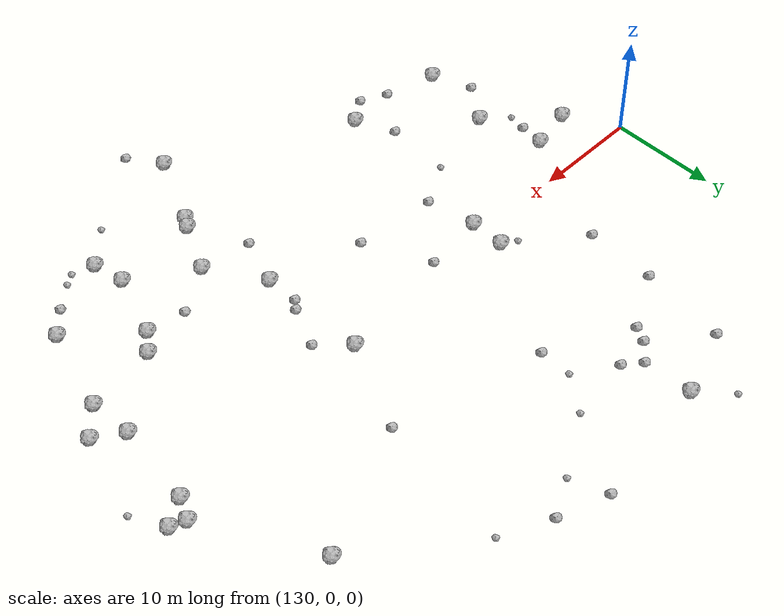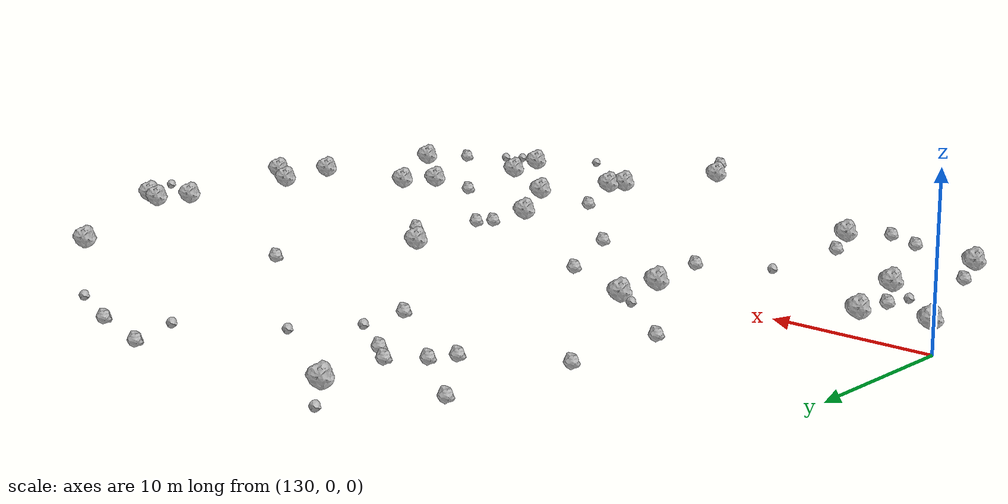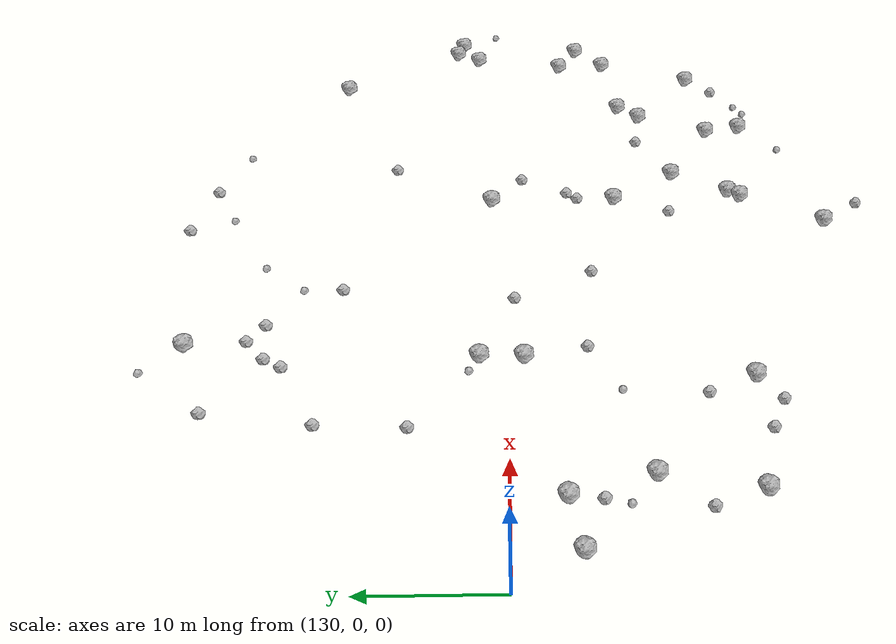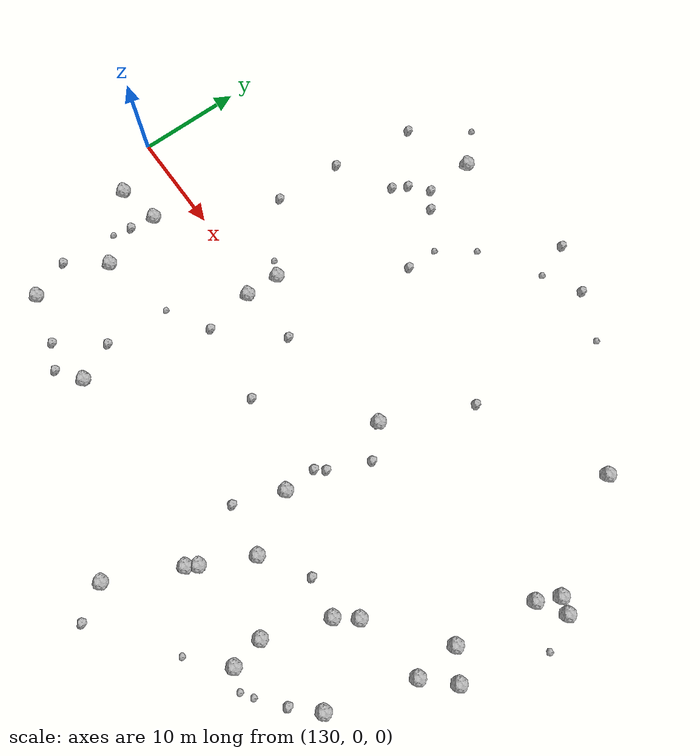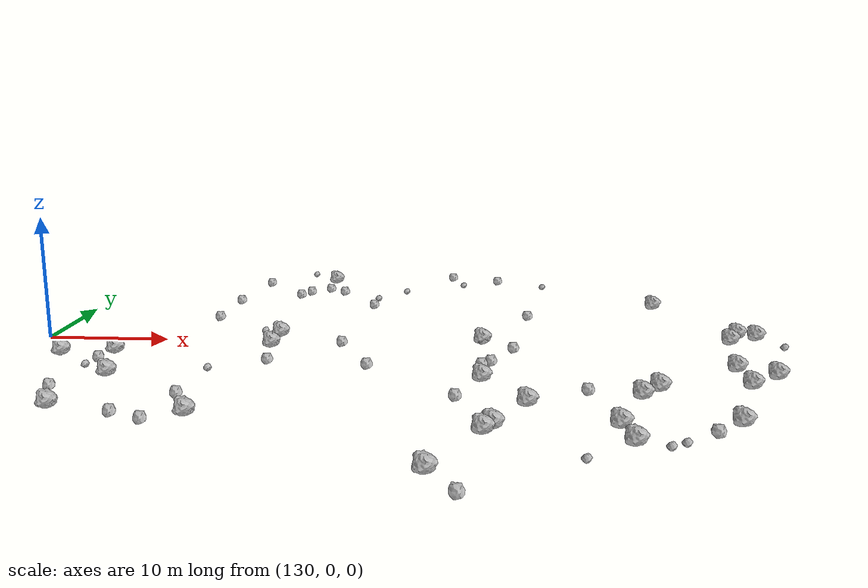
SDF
<sdf version="1.6">
 <world name="default">
  <include><uri>model://sun</uri></include>
  <model name="rock1_4_1">
   <include><uri>model://rock1</uri><pose>188.51218656683673 4.2702526640513625 0.5 0 0 0</pose></include>
  </model>
  <model name="rock1_4_2">
   <include><uri>model://rock1</uri><pose>137.03077907290964 -3.8331354373297764 0.5 0 0 0</pose></include>
  </model>
  <model name="rock1_4_3">
   <include><uri>model://rock1</uri><pose>149.03221803227103 2.2465650554795076 0.5 0 0 0</pose></include>
  </model>
  <model name="rock1_4_4">
   <include><uri>model://rock1</uri><pose>165.95236557643352 1.4352716643296475 0.5 0 0 0</pose></include>
  </model>
  <model name="rock1_4_5">
   <include><uri>model://rock1</uri><pose>138.67139170693392 -9.872992194344185 0.5 0 0 0</pose></include>
  </model>
  <model name="rock1_4_6">
   <include><uri>model://rock1</uri><pose>187.45057404764984 -6.5716923031455465 0.5 0 0 0</pose></include>
  </model>
  <model name="rock1_4_7">
   <include><uri>model://rock1</uri><pose>148.95156163179746 -1.0575789874239803 0.5 0 0 0</pose></include>
  </model>
  <model name="rock1_4_8">
   <include><uri>model://rock1</uri><pose>169.17019111806454 -14.058287331684996 0.5 0 0 0</pose></include>
  </model>
  <model name="rock1_4_9">
   <include><uri>model://rock1</uri><pose>146.96465039506302 -17.875773814668413 0.5 0 0 0</pose></include>
  </model>
  <model name="rock1_4_10">
   <include><uri>model://rock1</uri><pose>150.36375123327934 24.22257783033522 0.5 0 0 0</pose></include>
  </model>
  <model name="rock1_4_11">
   <include><uri>model://rock1</uri><pose>175.43507759985664 -20.797669726798475 0.5 0 0 0</pose></include>
  </model>
  <model name="rock1_4_12">
   <include><uri>model://rock1</uri><pose>166.05493679764174 -8.855758142765126 0.5 0 0 0</pose></include>
  </model>
  <model name="rock1_4_13">
   <include><uri>model://rock1</uri><pose>186.0915437391228 2.775346603505305 0.5 0 0 0</pose></include>
  </model>
  <model name="rock1_4_14">
   <include><uri>model://rock1</uri><pose>185.07593437901244 -9.026089347423692 0.5 0 0 0</pose></include>
  </model>
  <model name="rock1_4_15">
   <include><uri>model://rock1</uri><pose>178.490974357882 -10.082836905768854 0.5 0 0 0</pose></include>
  </model>
  <model name="rock1_4_16">
   <include><uri>model://rock1</uri><pose>166.87241592502465 -18.621045040143258 0.5 0 0 0</pose></include>
  </model>
  <model name="rock1_4_17">
   <include><uri>model://rock1</uri><pose>184.91529509013566 -4.912721017201882 0.5 0 0 0</pose></include>
  </model>
  <model name="rock1_4_18">
   <include><uri>model://rock1</uri><pose>177.0662252732106 -11.87381767033974 0.5 0 0 0</pose></include>
  </model>
  <model name="rock1_4_19">
   <include><uri>model://rock1</uri><pose>137.43037608826518 -17.145052644276856 0.5 0 0 0</pose></include>
  </model>
  <model name="rock1_4_20">
   <include><uri>model://rock1</uri><pose>163.15492389400697 -26.10988709603312 0.5 0 0 0</pose></include>
  </model>
  <model name="rock1_4_21">
   <include><uri>model://rock1</uri><pose>132.98709191167217 -4.708390019460868 0.5 0 0 0</pose></include>
  </model>
  <model name="rock1_4_22">
   <include><uri>model://rock1</uri><pose>182.61837588794822 -16.85442321829202 0.5 0 0 0</pose></include>
  </model>
  <model name="rock1_4_23">
   <include><uri>model://rock1</uri><pose>174.9095929539152 -17.78044758946841 0.5 0 0 0</pose></include>
  </model>
  <model name="rock1_4_24">
   <include><uri>model://rock1</uri><pose>181.62956464213295 14.910201304962271 0.5 0 0 0</pose></include>
  </model>
  <model name="rock1_4_25">
   <include><uri>model://rock1</uri><pose>187.0991441405771 4.78889294884592 0.5 0 0 0</pose></include>
  </model>
  <model name="rock1_4_26">
   <include><uri>model://rock1</uri><pose>166.27040730341872 -19.579570451808305 0.5 0 0 0</pose></include>
  </model>
  <model name="rock2_4_0">
   <include><uri>model://rock2</uri><pose>162.49031410860707 26.124133736363788 0.3 0 0 0</pose></include>
  </model>
  <model name="rock2_4_1">
   <include><uri>model://rock2</uri><pose>173.3654102766302 -11.349090308368279 0.3 0 0 0</pose></include>
  </model>
  <model name="rock2_4_2">
   <include><uri>model://rock2</uri><pose>165.9649245851478 -5.748726497287869 0.3 0 0 0</pose></include>
  </model>
  <model name="rock2_4_3">
   <include><uri>model://rock2</uri><pose>180.5698118641721 -18.99175932696302 0.3 0 0 0</pose></include>
  </model>
  <model name="rock2_4_4">
   <include><uri>model://rock2</uri><pose>142.52441050110016 7.181834308467643 0.3 0 0 0</pose></include>
  </model>
  <model name="rock2_4_5">
   <include><uri>model://rock2</uri><pose>143.93178270234478 21.924821342921653 0.3 0 0 0</pose></include>
  </model>
  <model name="rock2_4_6">
   <include><uri>model://rock2</uri><pose>154.60208051869222 -0.3894426107179356 0.3 0 0 0</pose></include>
  </model>
  <model name="rock2_4_7">
   <include><uri>model://rock2</uri><pose>144.63233412204596 -19.536186353118715 0.3 0 0 0</pose></include>
  </model>
  <model name="rock2_4_8">
   <include><uri>model://rock2</uri><pose>165.95786716557325 1.2859310829053143 0.3 0 0 0</pose></include>
  </model>
  <model name="rock2_4_9">
   <include><uri>model://rock2</uri><pose>148.02008168101784 16.735837959376617 0.3 0 0 0</pose></include>
  </model>
  <model name="rock2_4_10">
   <include><uri>model://rock2</uri><pose>149.67401816708104 -5.783633225630162 0.3 0 0 0</pose></include>
  </model>
  <model name="rock2_4_11">
   <include><uri>model://rock2</uri><pose>167.1415012464878 24.581538533230216 0.3 0 0 0</pose></include>
  </model>
  <model name="rock2_4_12">
   <include><uri>model://rock2</uri><pose>157.39292963062783 -6.498362718844469 0.3 0 0 0</pose></include>
  </model>
  <model name="rock2_4_13">
   <include><uri>model://rock2</uri><pose>142.19358738550338 -18.393797224242082 0.3 0 0 0</pose></include>
  </model>
  <model name="rock2_4_14">
   <include><uri>model://rock2</uri><pose>135.94105562690368 -13.419902877761281 0.3 0 0 0</pose></include>
  </model>
  <model name="rock2_4_15">
   <include><uri>model://rock2</uri><pose>169.80053186896015 9.601688086151164 0.3 0 0 0</pose></include>
  </model>
  <model name="rock2_4_16">
   <include><uri>model://rock2</uri><pose>165.03797962678811 -29.20340437147066 0.3 0 0 0</pose></include>
  </model>
  <model name="rock2_4_17">
   <include><uri>model://rock2</uri><pose>142.8089670982671 13.800645704343232 0.3 0 0 0</pose></include>
  </model>
  <model name="rock2_4_18">
   <include><uri>model://rock2</uri><pose>148.7915774190908 18.124250564278796 0.3 0 0 0</pose></include>
  </model>
  <model name="rock2_4_19">
   <include><uri>model://rock2</uri><pose>152.0692299279813 18.396688462279172 0.3 0 0 0</pose></include>
  </model>
  <model name="rock2_4_20">
   <include><uri>model://rock2</uri><pose>150.489867501394 19.63177426283479 0.3 0 0 0</pose></include>
  </model>
  <model name="rock2_4_21">
   <include><uri>model://rock2</uri><pose>166.6570582094871 -4.901630940938141 0.3 0 0 0</pose></include>
  </model>
  <model name="rock2_4_22">
   <include><uri>model://rock2</uri><pose>145.29840779030144 -14.285448724280785 0.3 0 0 0</pose></include>
  </model>
  <model name="rock2_4_23">
   <include><uri>model://rock2</uri><pose>155.64900654603775 12.917204949513888 0.3 0 0 0</pose></include>
  </model>
  <model name="rock2_4_24">
   <include><uri>model://rock2</uri><pose>164.27995799325146 -13.368316101933988 0.3 0 0 0</pose></include>
  </model>
  <model name="rock2_4_25">
   <include><uri>model://rock2</uri><pose>136.62944108060333 -6.221515092803237 0.3 0 0 0</pose></include>
  </model>
  <model name="rock2_4_26">
   <include><uri>model://rock2</uri><pose>168.38939858688573 -1.132295042993551 0.3 0 0 0</pose></include>
  </model>
  <model name="rock3_4_0">
   <include><uri>model://rock3</uri><pose>155.6952703855687 15.93799362735264 0.2 0 0 0</pose></include>
  </model>
  <model name="rock3_4_1">
   <include><uri>model://rock3</uri><pose>172.21170355250462 -23.882617598683034 0.2 0 0 0</pose></include>
  </model>
  <model name="rock3_4_2">
   <include><uri>model://rock3</uri><pose>178.3578715081089 -20.886204208592787 0.2 0 0 0</pose></include>
  </model>
  <model name="rock3_4_3">
   <include><uri>model://rock3</uri><pose>177.34653906746308 -21.566104960047024 0.2 0 0 0</pose></include>
  </model>
  <model name="rock3_4_4">
   <include><uri>model://rock3</uri><pose>147.67283331361236 27.02072979173481 0.2 0 0 0</pose></include>
  </model>
  <model name="rock3_4_5">
   <include><uri>model://rock3</uri><pose>136.2525150382166 -8.016968524925964 0.2 0 0 0</pose></include>
  </model>
  <model name="rock3_4_6">
   <include><uri>model://rock3</uri><pose>189.93112471224887 1.119949395140008 0.2 0 0 0</pose></include>
  </model>
  <model name="rock3_4_7">
   <include><uri>model://rock3</uri><pose>147.52799987829246 2.964442638366549 0.2 0 0 0</pose></include>
  </model>
  <model name="rock3_4_8">
   <include><uri>model://rock3</uri><pose>145.6714019798704 -8.135917799719653 0.2 0 0 0</pose></include>
  </model>
  <model name="rock3_4_9">
   <include><uri>model://rock3</uri><pose>171.64164580924518 22.444392085017206 0.2 0 0 0</pose></include>
  </model>
  <model name="rock3_4_10">
   <include><uri>model://rock3</uri><pose>163.68104082746873 22.63778033062622 0.2 0 0 0</pose></include>
  </model>
  <model name="rock3_4_11">
   <include><uri>model://rock3</uri><pose>158.13488518848055 19.23336887524229 0.2 0 0 0</pose></include>
  </model>
 </world>
</sdf>
